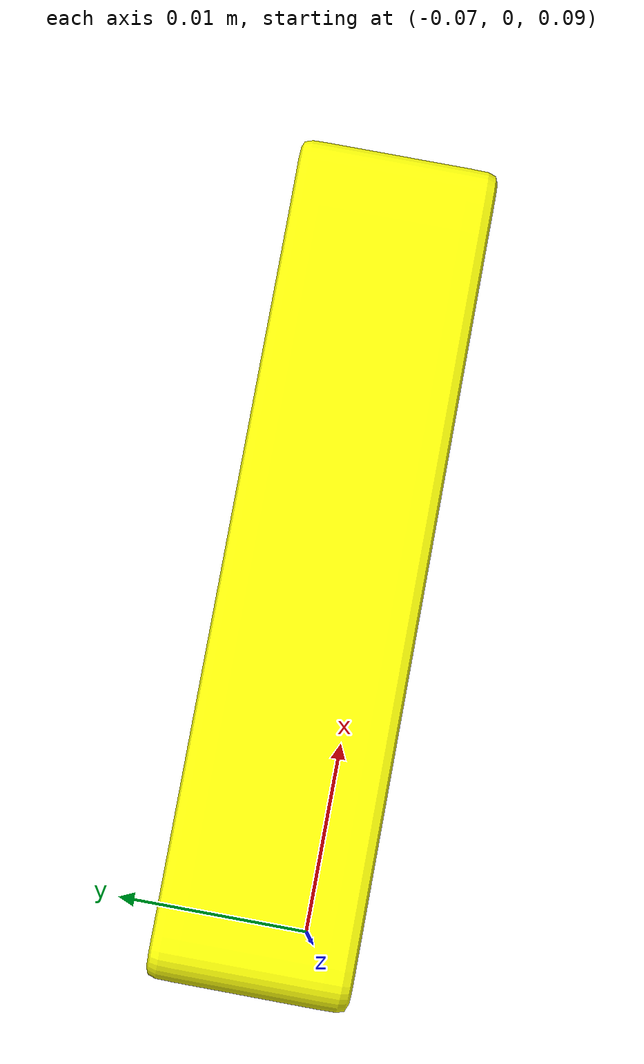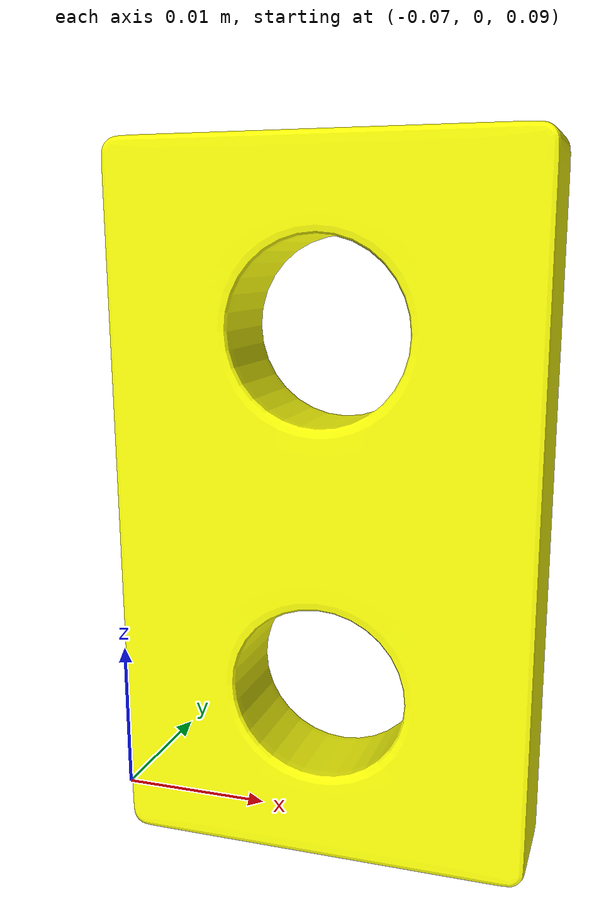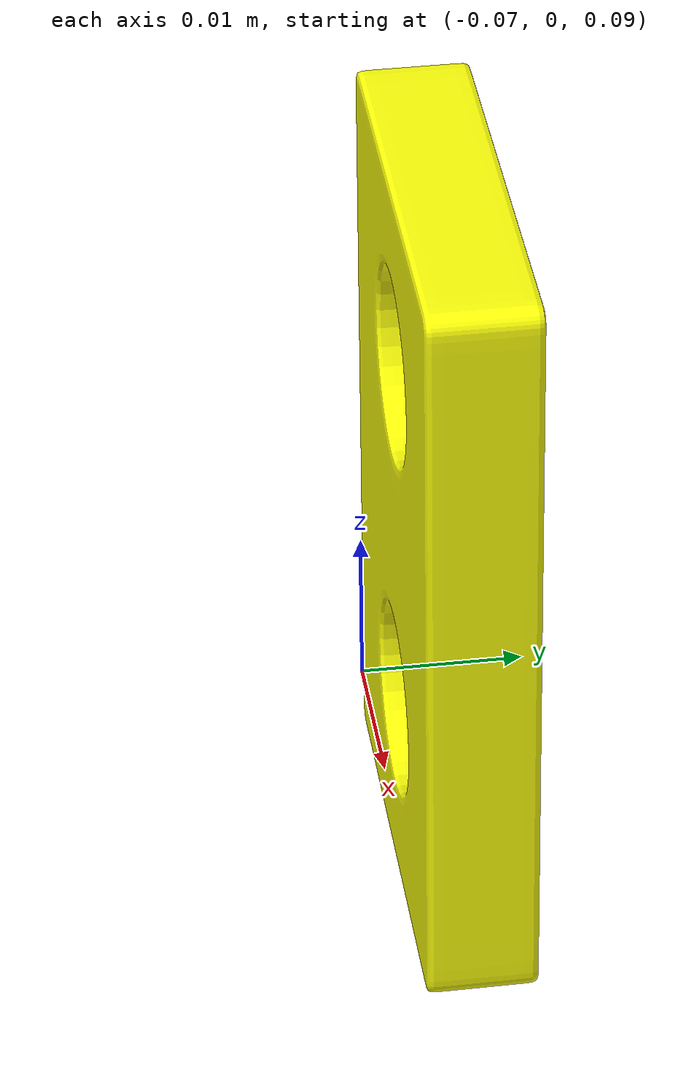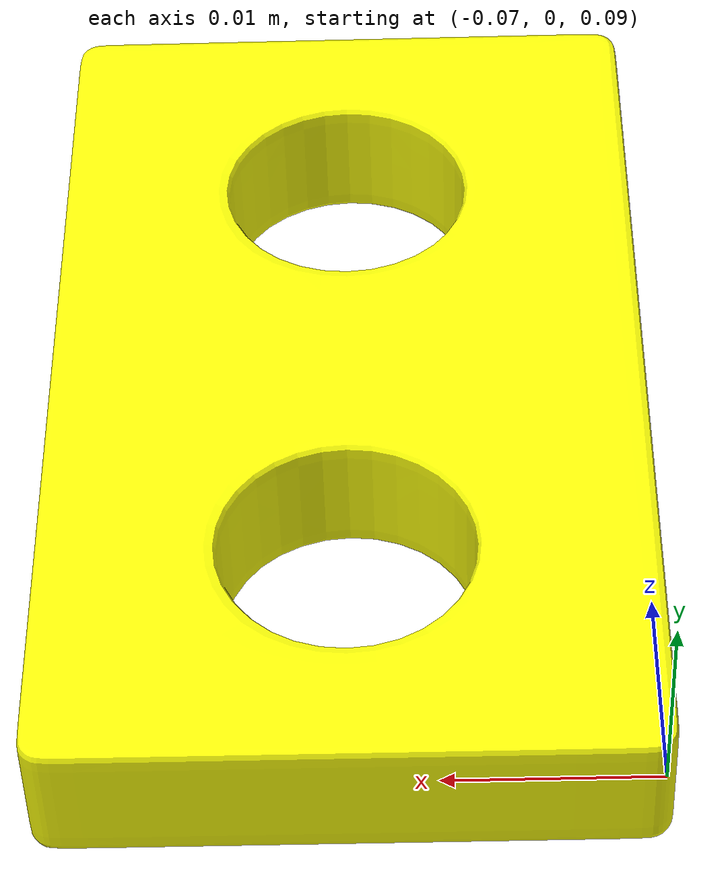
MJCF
<mujoco model="rectangle">
  <compiler angle="radian" meshdir="assets" texturedir="assets" autolimits="true"/>

  <default>
    <default class="visual">
      <geom group="2" type="mesh" contype="0" conaffinity="0"/>
    </default>
    <default class="collision">
      <geom group="3" type="mesh" mass="0" solimp="0.95 0.99 0.001" solref="0.004 1"/>
    </default>
      <default class="target_area">
      <geom group="3" type="mesh" contype="0" conaffinity="0" friction="0 0 0" solimp="0.99 0.99 0.000001" solref="0.000001 1"/>
    </default>
  </default>
  <asset>
    <material name="Color_Yellow" specular="0.5" shininess="0.25" rgba="0.985026 1.000000 0.029482 1.000000"/>
    <mesh file="rectangle.obj"/>
    <mesh file="rectangle_collision_0.obj"/>
    <mesh file="rectangle_collision_1.obj"/>
    <mesh file="rectangle_collision_2.obj"/>
    <mesh file="rectangle_collision_3.obj"/>
    <mesh file="rectangle_collision_4.obj"/>
    <mesh file="rectangle_collision_5.obj"/>
    <mesh file="rectangle_collision_6.obj"/>
    <mesh file="rectangle_collision_7.obj"/>
    <mesh file="rectangle_collision_8.obj"/>
    <mesh file="rectangle_collision_9.obj"/>
    <mesh file="rectangle_collision_10.obj"/>
    <mesh file="rectangle_collision_11.obj"/>
    <mesh file="rectangle_collision_12.obj"/>
    <mesh file="rectangle_collision_13.obj"/>
  </asset>
  <worldbody>
    <body name="rectangle">

    <body name="hole_site">
      <geom name="hole_site_1" type="cylinder" size=".006 .002 .04" pos="-0.056 0.0035 0.121" euler="1.5708 0 0" rgba="1 1 0 0" class="target_area"/>
      <geom name="hole_site_2" type="cylinder" size=".006 .002 .04" pos="-0.056 0.0035 0.098" euler="1.5708 0 0" rgba="1 1 0 0" class="target_area"/>
    </body>

      <geom material="Color_Yellow" mesh="rectangle" class="visual"/>
      <geom mesh="rectangle_collision_0" rgba="0.31981407385846417 0.16502401812406475 0.12804878270393116 1" class="collision"/>
      <geom mesh="rectangle_collision_1" rgba="0.8471911444281618 0.5135601759483315 0.7165994295568398 1" class="collision"/>
      <geom mesh="rectangle_collision_2" rgba="0.6880095870096147 0.8693620189912402 0.294581894748127 1" class="collision"/>
      <geom mesh="rectangle_collision_3" rgba="0.2526758006191654 0.44723003774743053 0.7968065936372405 1" class="collision"/>
      <geom mesh="rectangle_collision_4" rgba="0.002125789869589112 0.4785183063342351 0.02035274208439386 1" class="collision"/>
      <geom mesh="rectangle_collision_5" rgba="0.6051896183489112 0.5831415154832653 0.21045332232326086 1" class="collision"/>
      <geom mesh="rectangle_collision_6" rgba="0.9582851611085875 0.9494580838144905 0.6275249340933852 1" class="collision"/>
      <geom mesh="rectangle_collision_7" rgba="0.328940747928004 0.2461129721312585 0.787697926755911 1" class="collision"/>
      <geom mesh="rectangle_collision_8" rgba="0.22510804324685352 0.8451739128543497 0.7449959169987286 1" class="collision"/>
      <geom mesh="rectangle_collision_9" rgba="0.2928842156034882 0.6740391852663872 0.7592115902583528 1" class="collision"/>
      <geom mesh="rectangle_collision_10" rgba="0.1901865260768696 0.42430240746934533 0.48835446782568304 1" class="collision"/>
      <geom mesh="rectangle_collision_11" rgba="0.26703459557667764 0.9775761892364222 0.4092975202194914 1" class="collision"/>
      <geom mesh="rectangle_collision_12" rgba="0.5608285583894823 0.7844473116382508 0.2174840657459941 1" class="collision"/>
      <geom mesh="rectangle_collision_13" rgba="0.29907249585952544 0.7052008090023747 0.7559488636047208 1" class="collision"/>
    </body>
  </worldbody>
</mujoco>
